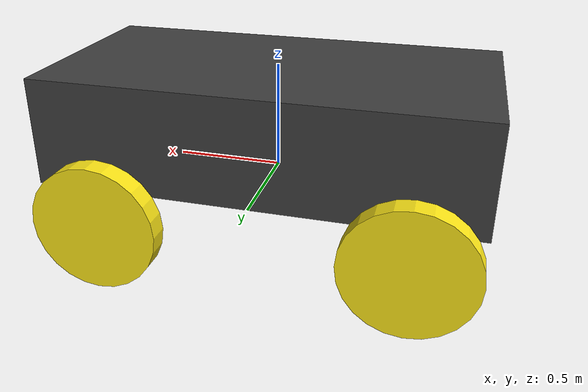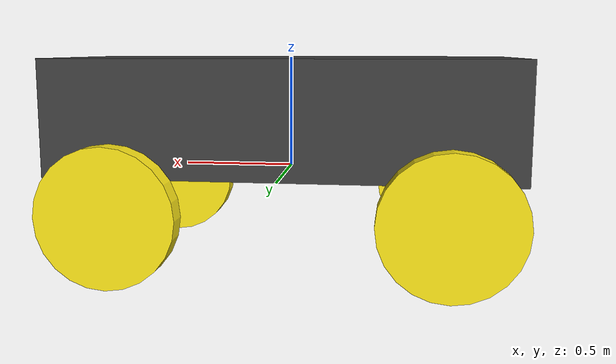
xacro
<?xml version="1.0"?>

<robot name="ackermann_steering_vehicle" xmlns:xacro="http://www.ros.org/wiki/xacro">

  <xacro:include filename="inertial_macros.xacro"/>

  <!-- Arguments -->
  <xacro:arg name="body_length" default="2.0" />
  <xacro:arg name="body_width" default="1.0" />
  <xacro:arg name="body_height" default="0.5" />
  <xacro:arg name="body_density" default="1000.0" />
  <xacro:arg name="wheel_radius" default="0.3" />
  <xacro:arg name="wheel_width" default="0.1" />
  <xacro:arg name="wheel_density" default="1000.0" />
  <xacro:arg name="max_steering_angle" default="0.6108" />
  <xacro:arg name="max_steering_angular_velocity" default="1.570796" />
  <xacro:arg name="max_steering_effort" default="1.0" />
  <xacro:arg name="max_velocity" default="1.0" />
  <xacro:arg name="max_effort" default="10.0" />

  <!-- Mathematical Constants -->
  <xacro:property name="PI" value="3.14159265"/>

  <!-- Vehicle Properties -->
  <xacro:property name="body_length" value="$(arg body_length)"/>
  <xacro:property name="body_width" value="$(arg body_width)"/>
  <xacro:property name="body_height" value="$(arg body_height)"/>
  <xacro:property name="body_density" value="$(arg body_density)"/>
  <xacro:property name="wheel_radius" value="$(arg wheel_radius)"/>
  <xacro:property name="wheel_width" value="$(arg wheel_width)"/>
  <xacro:property name="wheel_density" value="$(arg wheel_density)"/>
  <xacro:property name="max_steering_angle" value="$(arg max_steering_angle)"/>
  <xacro:property name="max_steering_angular_velocity" value="$(arg max_steering_angular_velocity)"/>
  <xacro:property name="max_steering_effort" value="$(arg max_steering_effort)"/>
  <xacro:property name="max_velocity" value="$(arg max_velocity)"/>
  <xacro:property name="max_effort" value="$(arg max_effort)"/>

  <xacro:property name="body_mass" value="${body_density * body_length * body_height * body_width}"/>
  <xacro:property name="body_inertia_x" value="${1.0/12.0 * body_mass * (body_height*body_height + body_width*body_width)}"/>
  <xacro:property name="body_inertia_y" value="${1.0/12.0 * body_mass * (body_length*body_length + body_height*body_height)}"/>
  <xacro:property name="body_inertia_z" value="${1.0/12.0 * body_mass * (body_length*body_length + body_width*body_width)}"/>
  <xacro:property name="wheel_separation" value="${body_width + wheel_width}"/>
  <xacro:property name="wheel_offset" value="${body_length/2 - wheel_radius}"/>
  <xacro:property name="wheel_mass" value="${wheel_density * PI * wheel_radius * wheel_radius * wheel_width}"/>
  <xacro:property name="wheel_inertia_x" value="${1.0/12.0 * wheel_mass * (3*wheel_radius*wheel_radius + wheel_width*wheel_width)}"/>
  <xacro:property name="wheel_inertia_y" value="${1.0/12.0 * wheel_mass * (3*wheel_radius*wheel_radius + wheel_width*wheel_width)}"/>
  <xacro:property name="wheel_inertia_z" value="${1.0/2.0 * wheel_mass * wheel_radius * wheel_radius}"/>
  <xacro:property name="max_wheel_angular_velocity" value="${max_velocity / wheel_radius}"/>

  <!-- Links -->

  <!-- Body Link -->
  <link name="body_link">
    <visual>
      <origin xyz="0.0 0.0 ${body_height/2}" rpy="0.0 0.0 0.0"/>
      <geometry>
        <box size="${body_length} ${body_width} ${body_height}"/>
      </geometry>
      <material name="body_material">
        <color rgba="0.25 0.25 0.25 1.0"/>
      </material>
    </visual>
    <collision>
      <origin xyz="0.0 0.0 ${body_height/2}" rpy="0.0 0.0 0.0"/>
      <geometry>
        <box size="${body_length} ${body_width} ${body_height}"/>
      </geometry>
    </collision>
    <inertial>
      <mass value="${body_mass}"/>
      <inertia ixx="${body_inertia_x}" ixy="0.0" ixz="0.0" iyy="${body_inertia_y}" iyz="0" izz="${body_inertia_z}"/>
      <origin xyz="0 0 ${body_height/2}" rpy="0 0 0"/>
    </inertial>
  </link>

  <!-- Front Left Wheel -->
  <link name="front_left_wheel_link">
    <visual>
      <origin xyz="0.0 0.0 0.0" rpy="1.570795 0.0 0.0"/>
      <geometry>
        <cylinder radius="${wheel_radius}" length="${wheel_width}"/>
      </geometry>
      <material name="wheel_material">
        <color rgba="1.0 0.91 0.09 1.0"/>
      </material>
    </visual>
    <collision>
      <origin xyz="0.0 0.0 0.0" rpy="1.570795 0.0 0.0"/>
      <geometry>
        <cylinder radius="${wheel_radius}" length="${wheel_width}"/>
      </geometry>
    </collision>
    <inertial>
      <mass value="${wheel_mass}"/>
      <inertia ixx="${wheel_inertia_x}" ixy="0.0" ixz="0.0" iyy="${wheel_inertia_y}" iyz="0" izz="${wheel_inertia_z}"/>
      <origin xyz="0.0 0.0 0.0" rpy="1.570795 0.0 0.0"/>
    </inertial>
  </link>

    <!-- Front Left Wheel Steering -->
  <link name="front_left_steering_link">
    <visual>
      <origin xyz="0.0 0.0 0.0" rpy="1.570795 0.0 0.0"/>
      <geometry>
        <cylinder length="0.001" radius="0.01"/>
      </geometry>
      <material name="wheel_material">
        <color rgba="1.0 0.91 0.09 1.0"/>
      </material>
    </visual>
    <collision>
      <origin xyz="0.0 0.0 0.0" rpy="1.570795 0.0 0.0"/>
      <geometry>
        <cylinder length="0.001" radius="0.01"/>
      </geometry>
    </collision>
    <inertial>
      <mass value="0.01"/>
      <inertia ixx="0.0" ixy="0.0" ixz="0.0" iyy="0.0" iyz="0.0" izz="0.0"/>
      <origin xyz="0.0 0.0 0.0" rpy="1.570795 0.0 0.0"/>
    </inertial>
  </link>

  <!-- Front Right Wheel -->
  <link name="front_right_wheel_link">
    <visual>
      <origin xyz="0.0 0.0 0.0" rpy="1.570795 0.0 0.0"/>
      <geometry>
        <cylinder radius="${wheel_radius}" length="${wheel_width}"/>
      </geometry>
      <material name="wheel_material">
        <color rgba="1.0 0.91 0.09 1.0"/>
      </material>
    </visual>
    <collision>
      <origin xyz="0.0 0.0 0.0" rpy="1.570795 0.0 0.0"/>
      <geometry>
        <cylinder radius="${wheel_radius}" length="${wheel_width}"/>
      </geometry>
    </collision>
    <inertial>
      <mass value="${wheel_mass}"/>
      <inertia ixx="${wheel_inertia_x}" ixy="0.0" ixz="0.0" iyy="${wheel_inertia_y}" iyz="0" izz="${wheel_inertia_z}"/>
      <origin xyz="0.0 0.0 0.0" rpy="1.570795 0.0 0.0"/>
    </inertial>
  </link>

  <!-- Front Right Wheel Steering -->
  <link name="front_right_steering_link">
    <visual>
      <origin xyz="0.0 0.0 0.0" rpy="1.570795 0.0 0.0"/>
      <geometry>
        <cylinder length="0.001" radius="0.01"/>
      </geometry>
      <material name="wheel_material">
        <color rgba="1.0 0.91 0.09 1.0"/>
      </material>
    </visual>
    <collision>
      <origin xyz="0.0 0.0 0.0" rpy="1.570795 0.0 0.0"/>
      <geometry>
        <cylinder length="0.001" radius="0.01"/>
      </geometry>
    </collision>
    <inertial>
      <mass value="0.01"/>
      <inertia ixx="0.0" ixy="0.0" ixz="0.0" iyy="0.0" iyz="0.0" izz="0.0"/>
      <origin xyz="0.0 0.0 0.0" rpy="1.570795 0.0 0.0"/>
    </inertial>
  </link>

  <!-- Rear Left Wheel -->
  <link name="rear_left_wheel_link">
    <visual>
      <origin xyz="0.0 0.0 0.0" rpy="1.570795 0.0 0.0"/>
      <geometry>
        <cylinder radius="${wheel_radius}" length="${wheel_width}"/>
      </geometry>
      <material name="wheel_material">
        <color rgba="1.0 0.91 0.09 1.0"/>
      </material>
    </visual>
    <collision>
      <origin xyz="0.0 0.0 0.0" rpy="1.570795 0.0 0.0"/>
      <geometry>
        <cylinder radius="${wheel_radius}" length="${wheel_width}"/>
      </geometry>
    </collision>
    <inertial>
      <mass value="2"/>
      <inertia ixx="${wheel_inertia_x}" ixy="0.0" ixz="0.0" iyy="${wheel_inertia_y}" iyz="0" izz="${wheel_inertia_z}"/>
      <origin xyz="0.0 0.0 0.0" rpy="1.570795 0.0 0.0"/>
    </inertial>
  </link>

  <!-- Rear Right Wheel -->
  <link name="rear_right_wheel_link">
    <visual>
      <origin xyz="0.0 0.0 0.0" rpy="1.570795 0.0 0.0"/>
      <geometry>
        <cylinder radius="${wheel_radius}" length="${wheel_width}"/>
      </geometry>
      <material name="wheel_material">
        <color rgba="1.0 0.91 0.09 1.0"/>
      </material>
    </visual>
    <collision>
      <origin xyz="0.0 0.0 0.0" rpy="1.570795 0.0 0.0"/>
      <geometry>
        <cylinder radius="${wheel_radius}" length="${wheel_width}"/>
      </geometry>
    </collision>
    <inertial>
      <mass value="2"/>
      <inertia ixx="${wheel_inertia_x}" ixy="0.0" ixz="0.0" iyy="${wheel_inertia_y}" iyz="0" izz="${wheel_inertia_z}"/>
      <origin xyz="0.0 0.0 0.0" rpy="1.570795 0.0 0.0"/>
    </inertial>
  </link>

  <!-- LiDAR link -->
  <link name="laser_frame">
    <visual>
      <geometry>
        <cylinder radius="0.065" length="0.078"/>
      </geometry>
      <material name="orange">
        <color rgba="1.00 0.40 0.00 1.00"/>
      </material>
    </visual>
    <collision>
      <geometry>
        <cylinder radius="0.065" length="0.078"/>
      </geometry>
    </collision>
    <xacro:inertial_cylinder mass="0.1" length="0.078" radius="0.05">
      <origin xyz="0 0 0" rpy="0 0 0"/>
    </xacro:inertial_cylinder>
  </link>

  <!-- Joints -->

  <!-- Front Left Steering Joint -->
  <joint name="front_left_steering_joint" type="revolute">
    <origin xyz="${wheel_offset} ${wheel_separation/2} -${wheel_radius/2}" rpy="0 0 0"/>
    <parent link="body_link"/>
    <child link="front_left_steering_link"/>
    <axis xyz="0 0 1"/>
    <limit effort="${max_steering_effort}" lower="${-max_steering_angle}" upper="${max_steering_angle}" velocity="${max_steering_angular_velocity}"/>
    <dynamics damping="0.1" friction="0.1"/>
  </joint>

  <!-- Front Left Wheel Joint -->
  <joint name="front_left_wheel_joint" type="continuous">
    <origin xyz="0 0 0" rpy="0 0 0"/>
    <parent link="front_left_steering_link"/>
    <child link="front_left_wheel_link"/>
    <axis xyz="0 1 0"/>
    <limit effort="${max_effort}" velocity="${max_wheel_angular_velocity}"/>
    <dynamics damping="0.1" friction="0.1"/>
  </joint>

  <!-- Front Right Steering Joint -->
  <joint name="front_right_steering_joint" type="revolute">
    <origin xyz="${wheel_offset} ${-wheel_separation/2} -${wheel_radius/2}" rpy="0 0 0"/>
    <parent link="body_link"/>
    <child link="front_right_steering_link"/>
    <axis xyz="0 0 1"/>
    <limit effort="${max_steering_effort}" lower="${-max_steering_angle}" upper="${max_steering_angle}" velocity="${max_steering_angular_velocity}"/>
    <dynamics damping="0.1" friction="0.1"/>
  </joint>

  <!-- Front Right Wheel Joint -->
  <joint name="front_right_wheel_joint" type="continuous">
    <origin xyz="0 0 0" rpy="0 0 0"/>
    <parent link="front_right_steering_link"/>
    <child link="front_right_wheel_link"/>
    <axis xyz="0 1 0"/>
    <limit effort="${max_effort}" velocity="${max_wheel_angular_velocity}"/>
    <dynamics damping="0.1" friction="0.1"/>
  </joint>

  <!-- Rear Left Wheel Joint -->
  <joint name="rear_left_wheel_joint" type="continuous">
    <origin xyz="-${wheel_offset} ${wheel_separation/2} -${wheel_radius/2}" rpy="0 0 0"/>
    <parent link="body_link"/>
    <child link="rear_left_wheel_link"/>
    <axis xyz="0 1 0"/>
    <limit effort="${max_effort}" velocity="${max_wheel_angular_velocity}"/>
    <dynamics damping="0.1" friction="0.1"/>
  </joint>

  <!-- Rear Right Wheel Joint -->
  <joint name="rear_right_wheel_joint" type="continuous">
    <origin xyz="-${wheel_offset} ${-wheel_separation/2} -${wheel_radius/2}" rpy="0 0 0"/>
    <parent link="body_link"/>
    <child link="rear_right_wheel_link"/>
    <axis xyz="0 1 0"/>
    <limit effort="${max_effort}" velocity="${max_wheel_angular_velocity}"/>
    <dynamics damping="0.1" friction="0.1"/>
  </joint>

  <!-- LiDAR Joint -->
  <joint name="laser_joint" type="fixed">
    <parent link="body_link"/>
    <child link="laser_frame"/>
    <origin xyz="0.0975 0 0.264" rpy="0 0 0"/>
  </joint>

  <!-- Gazebo Parameters -->
  <gazebo reference="body_link">
    <mu1>0.0001</mu1>
    <mu2>0.0001</mu2>
  </gazebo>

  <gazebo reference="front_right_wheel_link">
    <mu1>100.0</mu1>
    <mu2>100.0</mu2>
  </gazebo>

  <gazebo reference="front_left_wheel_link">
    <mu1>100.0</mu1>
    <mu2>100.0</mu2>
  </gazebo>

  <gazebo reference="rear_right_wheel_link">
    <mu1>100.0</mu1>
    <mu2>100.0</mu2>
  </gazebo>

  <gazebo reference="rear_left_wheel_link">
    <mu1>100.0</mu1>
    <mu2>100.0</mu2>
  </gazebo>

  <!-- Sensor Details -->
  <gazebo reference="laser_frame">
    <sensor name="laser" type="gpu_lidar">
      <pose> 0 0 0 0 0 0 0 </pose>
      <visualize>false</visualize>
      <update_rate>10</update_rate>
      <lidar>
        <scan>
          <horizontal>
            <samples>360</samples>
            <min_angle>-3/14</min_angle>
            <max_angle>3.14</max_angle>
          </horizontal>
        </scan>
        <range>
          <min>0.3</min>
          <max>8.0</max>
        </range>
      </lidar>
      <topic>scan</topic>
      <gz_frame_id>laser_frame</gz_frame_id>
    </sensor>
  </gazebo>

  <!-- Gazebo Control -->
  <ros2_control name="control" type="system">
    <hardware>
      <plugin>gz_ros2_control/GazeboSimSystem</plugin>
    </hardware>

    <joint name="front_left_steering_joint">
      <command_interface name="position">
        <param name="min">${-max_steering_angle}</param>
        <param name="max">${max_steering_angle}</param>
      </command_interface>

      <state_interface name="position"/>
      <state_interface name="velocity"/>
      <state_interface name="effort"/>
    </joint>

    <joint name="front_right_steering_joint">
      <command_interface name="position">
        <param name="min">${-max_steering_angle}</param>
        <param name="max">${max_steering_angle}</param>
      </command_interface>

      <state_interface name="position"/>
      <state_interface name="velocity"/>
      <state_interface name="effort"/>
    </joint>

    <joint name="rear_left_wheel_joint">
      <command_interface name="velocity">
        <param name="min">${-max_wheel_angular_velocity}</param>
        <param name="max">${max_wheel_angular_velocity}</param>
      </command_interface>

      <state_interface name="position"/>
      <state_interface name="velocity"/>
      <state_interface name="effort"/>
    </joint>

    <joint name="rear_right_wheel_joint">
      <command_interface name="velocity">
        <param name="min">${-max_wheel_angular_velocity}</param>
        <param name="max">${max_wheel_angular_velocity}</param>
      </command_interface>

      <state_interface name="position"/>
      <state_interface name="velocity"/>
      <state_interface name="effort"/>
    </joint>
  </ros2_control>

  <!-- Gazebo Plugins -->
  <gazebo>
    <plugin filename="gz-sim-joint-state-publisher-system" name="gz::sim::systems::JointStatePublisher">
      <topic>joint_states</topic>
      <joint_name>front_left_steering_joint</joint_name>
      <joint_name>front_right_steering_joint</joint_name>
      <joint_name>front_left_wheel_joint</joint_name>
      <joint_name>front_right_wheel_joint</joint_name>
      <joint_name>rear_left_wheel_joint</joint_name>
      <joint_name>rear_right_wheel_joint</joint_name>
    </plugin>

    <plugin filename="gz_ros2_control-system" name="gz_ros2_control::GazeboSimROS2ControlPlugin">
      <parameters>$(find gazebo_ackermann_steering_vehicle)/config/gz_ros2_control.yaml</parameters>
    </plugin>

    <plugin filename="gz-sim-sensors-system" name="gz::sim::systems::Sensors">
      <render_engine>ogre2</render_engine>
    </plugin>
  </gazebo>

</robot>
